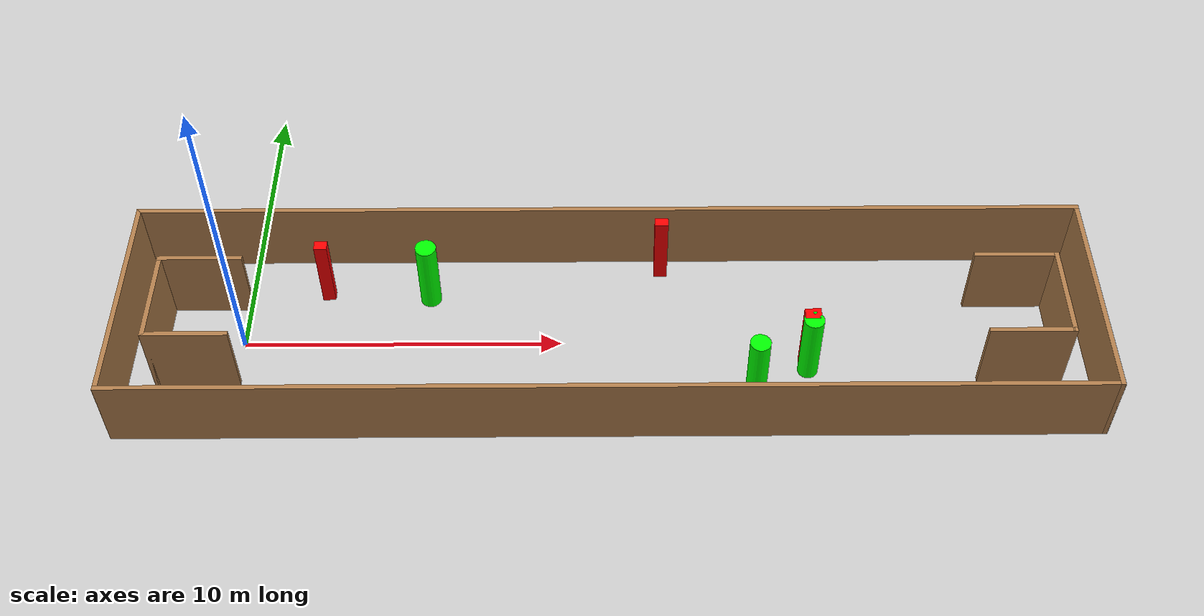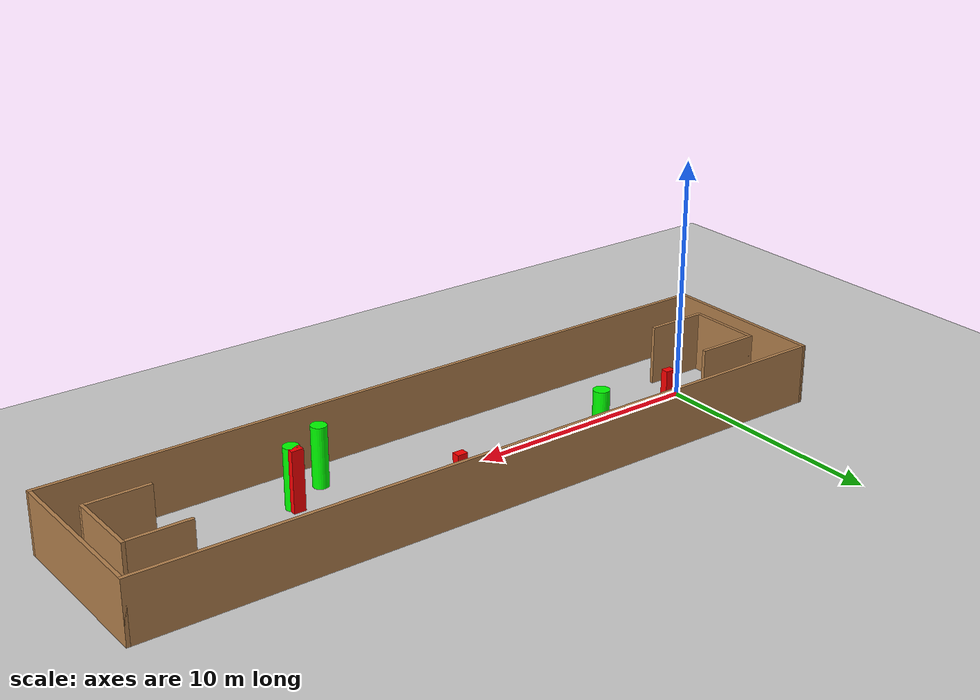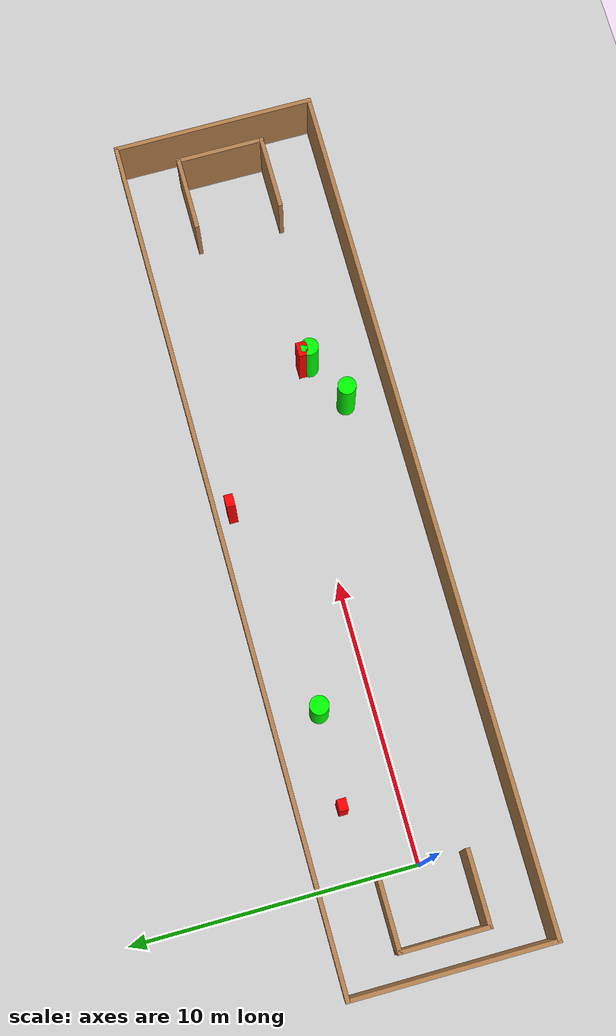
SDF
<sdf version="1.7">
 <world name="default">
  <light name="sun" type="directional">
   <pose>0 0 10 0 -0 0</pose>
   <diffuse>0.8 0.8 0.8 1</diffuse>
   <specular>0.2 0.2 0.2 1</specular>
   <attenuation>
    <range>1000</range>
    <constant>0.9</constant>
    <linear>0.01</linear>
    <quadratic>0.001</quadratic>
   </attenuation>
   <direction>-0.5 0.1 -0.9</direction>
   <spot><inner_angle>0</inner_angle><outer_angle>0</outer_angle><falloff>0</falloff></spot>
  </light>
  <model name="ground_plane">
   <static>1</static>
   <link name="link">
    <collision name="collision">
     <geometry><plane><normal>0 0 1</normal><size>100 100</size></plane></geometry>
     <surface>
      <contact><collide_bitmask>65535</collide_bitmask></contact>
      <friction><ode><mu>100</mu><mu2>50</mu2></ode></friction>
     </surface>
    </collision>
    <visual name="visual">
     <cast_shadows>0</cast_shadows>
     <geometry><plane><normal>0 0 1</normal><size>100 100</size></plane></geometry>
     <material>
      <script><uri>file://media/materials/scripts/gazebo.material</uri><name>Gazebo/Grey</name></script>
     </material>
    </visual>
   </link>
  </model>
  <gravity>0 0 -9.8</gravity>
  <magnetic_field>6e-06 2.3e-05 -4.2e-05</magnetic_field>
  <atmosphere type="adiabatic"/>
  <physics type="ode">
   <max_step_size>0.001</max_step_size>
   <real_time_factor>1</real_time_factor>
   <real_time_update_rate>1000</real_time_update_rate>
  </physics>
  <scene><ambient>0.4 0.4 0.4 1</ambient><background>0.7 0.7 0.7 1</background><shadows>1</shadows></scene>
  <spherical_coordinates>
   <surface_model>EARTH_WGS84</surface_model>
   <latitude_deg>0</latitude_deg>
   <longitude_deg>0</longitude_deg>
   <elevation>0</elevation>
   <heading_deg>0</heading_deg>
  </spherical_coordinates>
  <model name="my_base_walls">
   <link name="Wall_0">
    <collision name="Wall_0_Collision">
     <geometry><box><size>7.15 0.15 2.5</size></box></geometry>
     <pose>0 0 1.25 0 -0 0</pose>
    </collision>
    <visual name="Wall_0_Visual">
     <pose>0 0 1.25 0 -0 0</pose>
     <geometry><box><size>7.15 0.15 2.5</size></box></geometry>
     <material>
      <script><uri>file://media/materials/scripts/gazebo.material</uri><name>Gazebo/Wood</name></script>
      <ambient>1 1 1 1</ambient>
     </material>
     <meta><layer>0</layer></meta>
    </visual>
    <pose>-15 0 0 0 -0 1.5708</pose>
   </link>
   <link name="Wall_10">
    <collision name="Wall_10_Collision">
     <geometry><box><size>2.65 0.15 2.5</size></box></geometry>
     <pose>0 0 1.25 0 -0 0</pose>
    </collision>
    <visual name="Wall_10_Visual">
     <pose>0 0 1.25 0 -0 0</pose>
     <geometry><box><size>2.65 0.15 2.5</size></box></geometry>
     <material>
      <script><uri>file://media/materials/scripts/gazebo.material</uri><name>Gazebo/Wood</name></script>
      <ambient>1 1 1 1</ambient>
     </material>
     <meta><layer>0</layer></meta>
    </visual>
    <pose>-12.75 -1.5 0 0 -0 0</pose>
   </link>
   <link name="Wall_12">
    <collision name="Wall_12_Collision">
     <geometry><box><size>2.65 0.15 2.5</size></box></geometry>
     <pose>0 0 1.25 0 -0 0</pose>
    </collision>
    <visual name="Wall_12_Visual">
     <pose>0 0 1.25 0 -0 0</pose>
     <geometry><box><size>2.65 0.15 2.5</size></box></geometry>
     <material>
      <script><uri>file://media/materials/scripts/gazebo.material</uri><name>Gazebo/Wood</name></script>
      <ambient>1 1 1 1</ambient>
     </material>
     <meta><layer>0</layer></meta>
    </visual>
    <pose>-12.75 1.5 0 0 -0 0</pose>
   </link>
   <link name="Wall_14">
    <collision name="Wall_14_Collision">
     <geometry><box><size>3.15 0.15 2.5</size></box></geometry>
     <pose>0 0 1.25 0 -0 0</pose>
    </collision>
    <visual name="Wall_14_Visual">
     <pose>0 0 1.25 0 -0 0</pose>
     <geometry><box><size>3.15 0.15 2.5</size></box></geometry>
     <material>
      <script><uri>file://media/materials/scripts/gazebo.material</uri><name>Gazebo/Wood</name></script>
      <ambient>1 1 1 1</ambient>
     </material>
     <meta><layer>0</layer></meta>
    </visual>
    <pose>14 0 0 0 -0 -1.5708</pose>
   </link>
   <link name="Wall_15">
    <collision name="Wall_15_Collision">
     <geometry><box><size>2.65 0.15 2.5</size></box></geometry>
     <pose>0 0 1.25 0 -0 0</pose>
    </collision>
    <visual name="Wall_15_Visual">
     <pose>0 0 1.25 0 -0 0</pose>
     <geometry><box><size>2.65 0.15 2.5</size></box></geometry>
     <material>
      <script><uri>file://media/materials/scripts/gazebo.material</uri><name>Gazebo/Wood</name></script>
      <ambient>1 1 1 1</ambient>
     </material>
     <meta><layer>0</layer></meta>
    </visual>
    <pose>12.75 -1.5 0 0 -0 3.14159</pose>
   </link>
   <link name="Wall_17">
    <collision name="Wall_17_Collision">
     <geometry><box><size>2.65 0.15 2.5</size></box></geometry>
     <pose>0 0 1.25 0 -0 0</pose>
    </collision>
    <visual name="Wall_17_Visual">
     <pose>0 0 1.25 0 -0 0</pose>
     <geometry><box><size>2.65 0.15 2.5</size></box></geometry>
     <material>
      <script><uri>file://media/materials/scripts/gazebo.material</uri><name>Gazebo/Wood</name></script>
      <ambient>1 1 1 1</ambient>
     </material>
     <meta><layer>0</layer></meta>
    </visual>
    <pose>12.75 1.5 0 0 -0 3.14159</pose>
   </link>
   <link name="Wall_2">
    <collision name="Wall_2_Collision">
     <geometry><box><size>30.15 0.15 2.5</size></box></geometry>
     <pose>0 0 1.25 0 -0 0</pose>
    </collision>
    <visual name="Wall_2_Visual">
     <pose>0 0 1.25 0 -0 0</pose>
     <geometry><box><size>30.15 0.15 2.5</size></box></geometry>
     <material>
      <script><uri>file://media/materials/scripts/gazebo.material</uri><name>Gazebo/Wood</name></script>
      <ambient>1 1 1 1</ambient>
     </material>
     <meta><layer>0</layer></meta>
    </visual>
    <pose>-0 -3.5 0 0 -0 0</pose>
   </link>
   <link name="Wall_4">
    <collision name="Wall_4_Collision">
     <geometry><box><size>30.15 0.15 2.5</size></box></geometry>
     <pose>0 0 1.25 0 -0 0</pose>
    </collision>
    <visual name="Wall_4_Visual">
     <pose>0 0 1.25 0 -0 0</pose>
     <geometry><box><size>30.15 0.15 2.5</size></box></geometry>
     <material>
      <script><uri>file://media/materials/scripts/gazebo.material</uri><name>Gazebo/Wood</name></script>
      <ambient>1 1 1 1</ambient>
     </material>
     <meta><layer>0</layer></meta>
    </visual>
    <pose>-0 3.5 0 0 -0 0</pose>
   </link>
   <link name="Wall_6">
    <collision name="Wall_6_Collision">
     <geometry><box><size>7.15 0.15 2.5</size></box></geometry>
     <pose>0 0 1.25 0 -0 0</pose>
    </collision>
    <visual name="Wall_6_Visual">
     <pose>0 0 1.25 0 -0 0</pose>
     <geometry><box><size>7.15 0.15 2.5</size></box></geometry>
     <material>
      <script><uri>file://media/materials/scripts/gazebo.material</uri><name>Gazebo/Wood</name></script>
      <ambient>1 1 1 1</ambient>
     </material>
     <meta><layer>0</layer></meta>
    </visual>
    <pose>15 0 0 0 -0 -1.5708</pose>
   </link>
   <link name="Wall_9">
    <collision name="Wall_9_Collision">
     <geometry><box><size>3.15 0.15 2.5</size></box></geometry>
     <pose>0 0 1.25 0 -0 0</pose>
    </collision>
    <visual name="Wall_9_Visual">
     <pose>0 0 1.25 0 -0 0</pose>
     <geometry><box><size>3.15 0.15 2.5</size></box></geometry>
     <material>
      <script><uri>file://media/materials/scripts/gazebo.material</uri><name>Gazebo/Wood</name></script>
      <ambient>1 1 1 1</ambient>
     </material>
     <meta><layer>0</layer></meta>
    </visual>
    <pose>-14 0 0 0 -0 -1.5708</pose>
   </link>
   <static>1</static>
   <pose>11.5 0 0 0 -0 0</pose>
  </model>
  <model name="cylinder1">
   <static>1</static>
   <link name="link">
    <inertial>
     <mass>1</mass>
     <inertia><ixx>0.5</ixx><ixy>0</ixy><ixz>0</ixz><iyy>0.5</iyy><iyz>0</iyz><izz>1</izz></inertia>
    </inertial>
    <collision name="collision">
     <geometry><cylinder><radius>0.3199757660606675</radius><length>2.5</length></cylinder></geometry>
    </collision>
    <visual name="visual">
     <geometry><cylinder><radius>0.3199757660606675</radius><length>2.5</length></cylinder></geometry>
     <material>
      <ambient>0 1 0 1</ambient>
      <diffuse>0 1 0 1</diffuse>
      <specular>0.1 0.1 0.1 1</specular>
      <emissive>0 0 0 0</emissive>
     </material>
    </visual>
   </link>
   <pose>16.020228626210745 -1.9612446279993452 1.25 0 0 0</pose>
  </model>
  <model name="cylinder2">
   <static>1</static>
   <link name="link">
    <inertial>
     <mass>1</mass>
     <inertia><ixx>0.5</ixx><ixy>0</ixy><ixz>0</ixz><iyy>0.5</iyy><iyz>0</iyz><izz>1</izz></inertia>
    </inertial>
    <collision name="collision">
     <geometry><cylinder><radius>0.33046878155619125</radius><length>2.5</length></cylinder></geometry>
    </collision>
    <visual name="visual">
     <geometry><cylinder><radius>0.33046878155619125</radius><length>2.5</length></cylinder></geometry>
     <material>
      <ambient>0 1 0 1</ambient>
      <diffuse>0 1 0 1</diffuse>
      <specular>0.1 0.1 0.1 1</specular>
      <emissive>0 0 0 0</emissive>
     </material>
    </visual>
   </link>
   <pose>5.764198920400309 1.8599040042327477 1.25 0 0 0</pose>
  </model>
  <model name="cylinder3">
   <static>1</static>
   <link name="link">
    <inertial>
     <mass>1</mass>
     <inertia><ixx>0.5</ixx><ixy>0</ixy><ixz>0</ixz><iyy>0.5</iyy><iyz>0</iyz><izz>1</izz></inertia>
    </inertial>
    <collision name="collision">
     <geometry><cylinder><radius>0.31383299816520094</radius><length>2.5</length></cylinder></geometry>
    </collision>
    <visual name="visual">
     <geometry><cylinder><radius>0.31383299816520094</radius><length>2.5</length></cylinder></geometry>
     <material>
      <ambient>0 1 0 1</ambient>
      <diffuse>0 1 0 1</diffuse>
      <specular>0.1 0.1 0.1 1</specular>
      <emissive>0 0 0 0</emissive>
     </material>
    </visual>
   </link>
   <pose>17.702653518323558 -1.1026072024789673 1.25 0 0 0</pose>
  </model>
  <model name="box1">
   <static>1</static>
   <link name="link">
    <inertial>
     <mass>1</mass>
     <inertia><ixx>0.083</ixx><ixy>0</ixy><ixz>0</ixz><iyy>0.083</iyy><iyz>0</iyz><izz>0.083</izz></inertia>
    </inertial>
    <collision name="collision">
     <geometry><box><size>0.49985226647030495 0.3735889541037781 2.5</size></box></geometry>
    </collision>
    <visual name="visual">
     <geometry><box><size>0.49985226647030495 0.3735889541037781 2.5</size></box></geometry>
     <material>
      <ambient>1 0 0 1</ambient>
      <diffuse>1 0 0 1</diffuse>
      <specular>0.1 0.1 0.1 1</specular>
      <emissive>0 0 0 0</emissive>
     </material>
    </visual>
    <sensor name="my_contact" type="contact">
     <contact><collision>box_collision</collision><topic>__default_topic__</topic></contact>
    </sensor>
   </link>
   <pose>17.69204025346825 -0.8485198192131067 1.25 0 0 0</pose>
  </model>
  <model name="box2">
   <static>1</static>
   <link name="link">
    <inertial>
     <mass>1</mass>
     <inertia><ixx>0.083</ixx><ixy>0</ixy><ixz>0</ixz><iyy>0.083</iyy><iyz>0</iyz><izz>0.083</izz></inertia>
    </inertial>
    <collision name="collision">
     <geometry><box><size>0.40579839363443204 0.3096409358238055 2.5</size></box></geometry>
    </collision>
    <visual name="visual">
     <geometry><box><size>0.40579839363443204 0.3096409358238055 2.5</size></box></geometry>
     <material>
      <ambient>1 0 0 1</ambient>
      <diffuse>1 0 0 1</diffuse>
      <specular>0.1 0.1 0.1 1</specular>
      <emissive>0 0 0 0</emissive>
     </material>
    </visual>
    <sensor name="my_contact" type="contact">
     <contact><collision>box_collision</collision><topic>__default_topic__</topic></contact>
    </sensor>
   </link>
   <pose>2.461992343212664 1.9946354188388753 1.25 0 0 0</pose>
  </model>
  <model name="box3">
   <static>1</static>
   <link name="link">
    <inertial>
     <mass>1</mass>
     <inertia><ixx>0.083</ixx><ixy>0</ixy><ixz>0</ixz><iyy>0.083</iyy><iyz>0</iyz><izz>0.083</izz></inertia>
    </inertial>
    <collision name="collision">
     <geometry><box><size>0.42698500527729333 0.30904384697478143 2.5</size></box></geometry>
    </collision>
    <visual name="visual">
     <geometry><box><size>0.42698500527729333 0.30904384697478143 2.5</size></box></geometry>
     <material>
      <ambient>1 0 0 1</ambient>
      <diffuse>1 0 0 1</diffuse>
      <specular>0.1 0.1 0.1 1</specular>
      <emissive>0 0 0 0</emissive>
     </material>
    </visual>
    <sensor name="my_contact" type="contact">
     <contact><collision>box_collision</collision><topic>__default_topic__</topic></contact>
    </sensor>
   </link>
   <pose>13.198640620080836 2.9257167585708803 1.25 0 0 0</pose>
  </model>
 </world>
</sdf>
